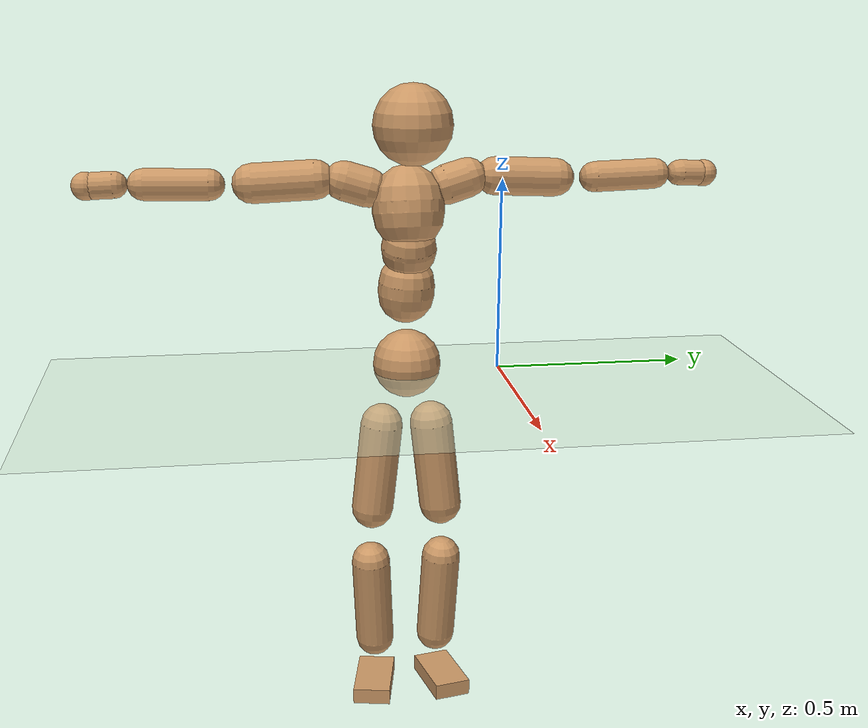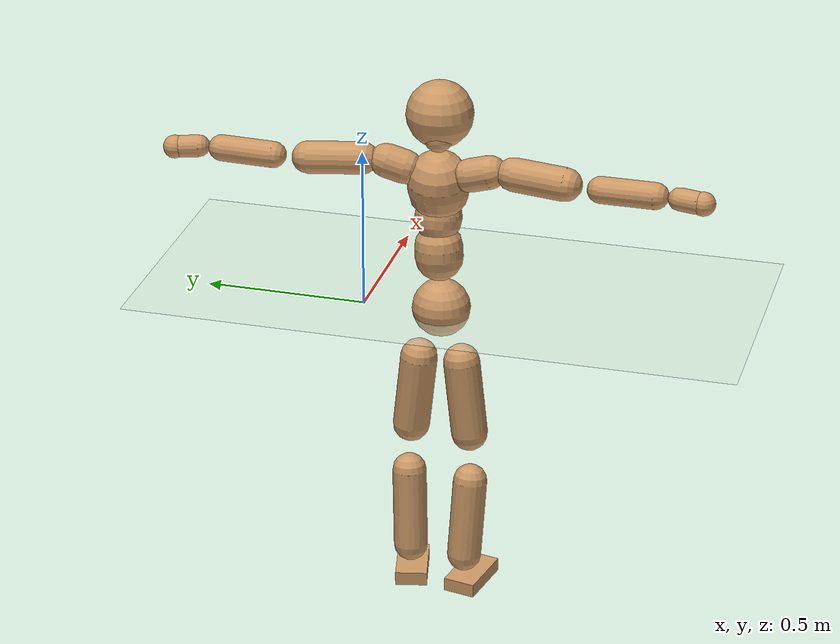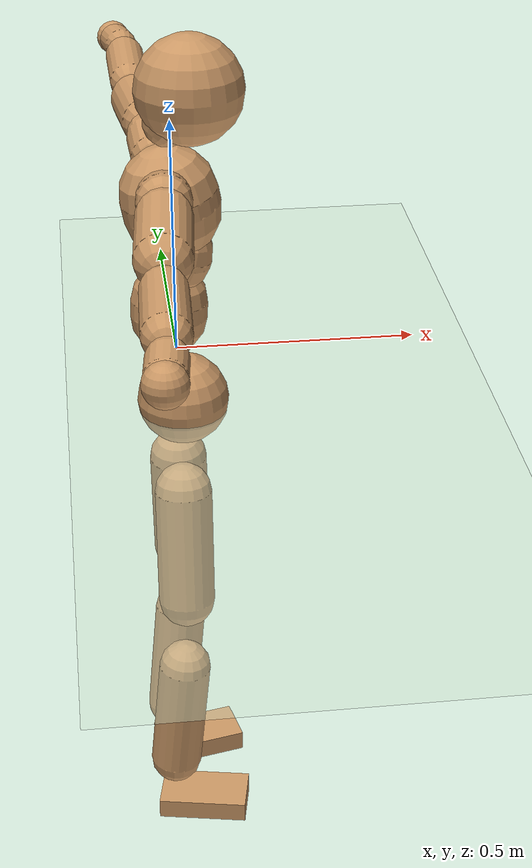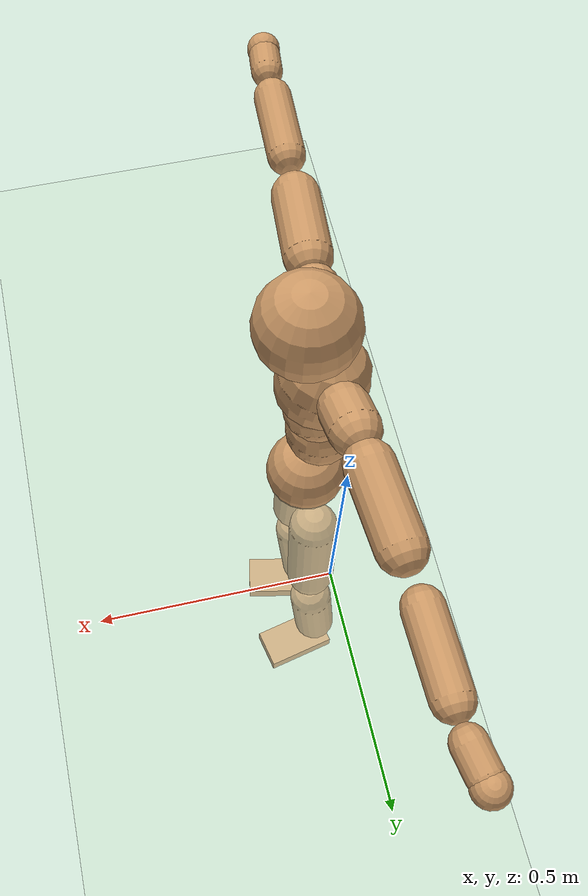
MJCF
<mujoco model="humanoid">
  <compiler coordinate="local"/>
  <default>
    <joint damping="0.0" armature="0.01" stiffness="0.0" limited="true"/>
    <geom conaffinity="1" condim="3" contype="7" margin="0.001" rgba="0.8 0.6 .4 1"/>
  </default>
  <asset>
    <texture type="skybox" builtin="gradient" rgb1=".4 .5 .6" rgb2="0 0 0" width="100" height="100"/>
    <texture builtin="flat" height="1278" mark="cross" markrgb="1 1 1" name="texgeom" random="0.01" rgb1="0.8 0.6 0.4" rgb2="0.8 0.6 0.4" type="cube" width="127"/>
    <texture builtin="checker" height="100" name="texplane" rgb1="0 0 0" rgb2="0.8 0.8 0.8" type="2d" width="100"/>
    <material name="MatPlane" reflectance="0.5" shininess="1" specular="1" texrepeat="60 60" texture="texplane"/>
    <material name="geom" texture="texgeom" texuniform="true"/>
  </asset>
  <worldbody>
    <light cutoff="100" diffuse="1 1 1" dir="-0 0 -1.3" directional="true" exponent="1" pos="0 0 1.3" specular=".1 .1 .1"/>
    <geom conaffinity="1" condim="3" name="floor" pos="0 0 0" rgba="0.8 0.9 0.8 1" size="100 100 .2" type="plane" material="MatPlane"/>
    <body name="Pelvis" pos="-0.0041 -0.2458 0.019">
      <freejoint name="Pelvis"/>
      <geom type="sphere" contype="1" conaffinity="1" density="500" size="0.0899" pos="0.0000 0.0000 0.0000" name="Pelvis"/>
      <body name="L_Hip" pos="-0.0106 0.0594 -0.0939">
        <joint name="L_Hip_x" type="hinge" pos="0 0 0" axis="1 0 0" stiffness="800" damping="80" armature="0.02" range="-180.0000 180.0000"/>
        <joint name="L_Hip_y" type="hinge" pos="0 0 0" axis="0 1 0" stiffness="800" damping="80" armature="0.02" range="-180.0000 180.0000"/>
        <joint name="L_Hip_z" type="hinge" pos="0 0 0" axis="0 0 1" stiffness="800" damping="80" armature="0.02" range="-180.0000 180.0000"/>
        <geom type="capsule" contype="1" conaffinity="1" density="500" fromto="0.0012 0.0087 -0.0791 0.0049 0.0347 -0.3163" size="0.0576" name="L_Hip"/>
        <body name="L_Knee" pos="0.0061 0.0434 -0.3954">
          <joint name="L_Knee_x" type="hinge" pos="0 0 0" axis="1 0 0" stiffness="800" damping="80" armature="0.02" range="-180.0000 180.0000"/>
          <joint name="L_Knee_y" type="hinge" pos="0 0 0" axis="0 1 0" stiffness="800" damping="80" armature="0.02" range="-180.0000 180.0000"/>
          <joint name="L_Knee_z" type="hinge" pos="0 0 0" axis="0 0 1" stiffness="800" damping="80" armature="0.02" range="-180.0000 180.0000"/>
          <geom type="capsule" contype="1" conaffinity="1" density="500" fromto="-0.0082 -0.0035 -0.0843 -0.0327 -0.0141 -0.3372" size="0.0532" name="L_Knee"/>
          <body name="L_Ankle" pos="-0.0409 -0.0177 -0.4215">
            <joint name="L_Ankle_x" type="hinge" pos="0 0 0" axis="1 0 0" stiffness="800" damping="80" armature="0.02" range="-180.0000 180.0000"/>
            <joint name="L_Ankle_y" type="hinge" pos="0 0 0" axis="0 1 0" stiffness="800" damping="80" armature="0.02" range="-180.0000 180.0000"/>
            <joint name="L_Ankle_z" type="hinge" pos="0 0 0" axis="0 0 1" stiffness="800" damping="80" armature="0.02" range="-180.0000 180.0000"/>
            <geom type="box" contype="1" conaffinity="1" density="500" pos="0.0638 0.0139 -0.0285" size="0.0896 0.0497 0.0218" quat="0.9943 0.0000 0.0000 0.1067" name="L_Ankle"/>
            <body name="L_Toe" pos="0.1276 0.0277 -0.0569">
              <joint name="L_Toe_x" type="hinge" pos="0 0 0" axis="1 0 0" stiffness="500" damping="50" armature="0.02" range="-180.0000 180.0000"/>
              <joint name="L_Toe_y" type="hinge" pos="0 0 0" axis="0 1 0" stiffness="500" damping="50" armature="0.02" range="-180.0000 180.0000"/>
              <joint name="L_Toe_z" type="hinge" pos="0 0 0" axis="0 0 1" stiffness="500" damping="50" armature="0.02" range="-180.0000 180.0000"/>
              <geom type="box" contype="1" conaffinity="1" density="500" pos="0.0000 0.0000 0.0279" size="0.001 0.0024 0.0011" quat="0.9937 0.0000 0.0000 0.1124" name="L_Toe"/>
            </body>
          </body>
        </body>
      </body>
      <body name="R_Hip" pos="-0.009 -0.0582 -0.092">
        <joint name="R_Hip_x" type="hinge" pos="0 0 0" axis="1 0 0" stiffness="800" damping="80" armature="0.02" range="-180.0000 180.0000"/>
        <joint name="R_Hip_y" type="hinge" pos="0 0 0" axis="0 1 0" stiffness="800" damping="80" armature="0.02" range="-180.0000 180.0000"/>
        <joint name="R_Hip_z" type="hinge" pos="0 0 0" axis="0 0 1" stiffness="800" damping="80" armature="0.02" range="-180.0000 180.0000"/>
        <geom type="capsule" contype="1" conaffinity="1" density="500" fromto="-0.0004 -0.0088 -0.0811 -0.0015 -0.0353 -0.3244" size="0.0565" name="R_Hip"/>
        <body name="R_Knee" pos="-0.0019 -0.0441 -0.4055">
          <joint name="R_Knee_x" type="hinge" pos="0 0 0" axis="1 0 0" stiffness="800" damping="80" armature="0.02" range="-180.0000 180.0000"/>
          <joint name="R_Knee_y" type="hinge" pos="0 0 0" axis="0 1 0" stiffness="800" damping="80" armature="0.02" range="-180.0000 180.0000"/>
          <joint name="R_Knee_z" type="hinge" pos="0 0 0" axis="0 0 1" stiffness="800" damping="80" armature="0.02" range="-180.0000 180.0000"/>
          <geom type="capsule" contype="1" conaffinity="1" density="500" fromto="-0.0079 0.0039 -0.0842 -0.0316 0.0158 -0.3368" size="0.0532" name="R_Knee"/>
          <body name="R_Ankle" pos="-0.0396 0.0197 -0.421">
            <joint name="R_Ankle_x" type="hinge" pos="0 0 0" axis="1 0 0" stiffness="800" damping="80" armature="0.02" range="-180.0000 180.0000"/>
            <joint name="R_Ankle_y" type="hinge" pos="0 0 0" axis="0 1 0" stiffness="800" damping="80" armature="0.02" range="-180.0000 180.0000"/>
            <joint name="R_Ankle_z" type="hinge" pos="0 0 0" axis="0 0 1" stiffness="800" damping="80" armature="0.02" range="-180.0000 180.0000"/>
            <geom type="box" contype="1" conaffinity="1" density="500" pos="0.0661 -0.0130 -0.0248" size="0.0923 0.0506 0.0215" quat="0.9953 0.0000 0.0000 -0.0968" name="R_Ankle"/>
            <body name="R_Toe" pos="0.1322 -0.026 -0.0495">
              <joint name="R_Toe_x" type="hinge" pos="0 0 0" axis="1 0 0" stiffness="500" damping="50" armature="0.02" range="-180.0000 180.0000"/>
              <joint name="R_Toe_y" type="hinge" pos="0 0 0" axis="0 1 0" stiffness="500" damping="50" armature="0.02" range="-180.0000 180.0000"/>
              <joint name="R_Toe_z" type="hinge" pos="0 0 0" axis="0 0 1" stiffness="500" damping="50" armature="0.02" range="-180.0000 180.0000"/>
              <geom type="box" contype="1" conaffinity="1" density="500" pos="0.0000 0.0000 0.0251" size="0.001 0.0025 0.0011" quat="0.9961 0.0000 0.0000 -0.0882" name="R_Toe"/>
            </body>
          </body>
        </body>
      </body>
      <body name="Torso" pos="-0.0263 -0.003 0.1172">
        <joint name="Torso_x" type="hinge" pos="0 0 0" axis="1 0 0" stiffness="1000" damping="100" armature="0.02" range="-180.0000 180.0000"/>
        <joint name="Torso_y" type="hinge" pos="0 0 0" axis="0 1 0" stiffness="1000" damping="100" armature="0.02" range="-180.0000 180.0000"/>
        <joint name="Torso_z" type="hinge" pos="0 0 0" axis="0 0 1" stiffness="1000" damping="100" armature="0.02" range="-180.0000 180.0000"/>
        <geom type="capsule" contype="1" conaffinity="1" density="500" fromto="0.0052 0.0056 0.0955 0.0035 0.0037 0.0637" size="0.0739" name="Torso"/>
        <body name="Spine" pos="0.0087 0.0093 0.1591">
          <joint name="Spine_x" type="hinge" pos="0 0 0" axis="1 0 0" stiffness="1000" damping="100" armature="0.02" range="-180.0000 180.0000"/>
          <joint name="Spine_y" type="hinge" pos="0 0 0" axis="0 1 0" stiffness="1000" damping="100" armature="0.02" range="-180.0000 180.0000"/>
          <joint name="Spine_z" type="hinge" pos="0 0 0" axis="0 0 1" stiffness="1000" damping="100" armature="0.02" range="-180.0000 180.0000"/>
          <geom type="capsule" contype="1" conaffinity="1" density="500" fromto="0.0110 0.0005 0.0359 0.0074 0.0003 0.0240" size="0.0718" name="Spine"/>
          <body name="Chest" pos="0.0184 0.0008 0.0599">
            <joint name="Chest_x" type="hinge" pos="0 0 0" axis="1 0 0" stiffness="1000" damping="100" armature="0.02" range="-180.0000 180.0000"/>
            <joint name="Chest_y" type="hinge" pos="0 0 0" axis="0 1 0" stiffness="1000" damping="100" armature="0.02" range="-180.0000 180.0000"/>
            <joint name="Chest_z" type="hinge" pos="0 0 0" axis="0 0 1" stiffness="1000" damping="100" armature="0.02" range="-180.0000 180.0000"/>
            <geom type="capsule" contype="1" conaffinity="1" density="500" fromto="-0.0167 -0.0018 0.0915 -0.0111 -0.0012 0.0610" size="0.0932" name="Chest"/>
            <body name="Neck" pos="-0.0264 -0.0044 0.216">
              <joint name="Neck_x" type="hinge" pos="0 0 0" axis="1 0 0" stiffness="500" damping="50" armature="0.02" range="-180.0000 180.0000"/>
              <joint name="Neck_y" type="hinge" pos="0 0 0" axis="0 1 0" stiffness="500" damping="50" armature="0.02" range="-180.0000 180.0000"/>
              <joint name="Neck_z" type="hinge" pos="0 0 0" axis="0 0 1" stiffness="500" damping="50" armature="0.02" range="-180.0000 180.0000"/>
              <geom type="capsule" contype="1" conaffinity="1" density="500" fromto="0.0106 0.0019 0.0142 0.0422 0.0074 0.0570" size="0.0455" name="Neck"/>
              <body name="Head" pos="0.0528 0.0093 0.0712">
                <joint name="Head_x" type="hinge" pos="0 0 0" axis="1 0 0" stiffness="500" damping="50" armature="0.02" range="-180.0000 180.0000"/>
                <joint name="Head_y" type="hinge" pos="0 0 0" axis="0 1 0" stiffness="500" damping="50" armature="0.02" range="-180.0000 180.0000"/>
                <joint name="Head_z" type="hinge" pos="0 0 0" axis="0 0 1" stiffness="500" damping="50" armature="0.02" range="-180.0000 180.0000"/>
                <geom type="sphere" contype="1" conaffinity="1" density="500" size="0.1022" pos="0.0000 0.0000 0.0000" name="Head"/>
              </body>
            </body>
            <body name="L_Thorax" pos="-0.0268 0.078 0.123">
              <joint name="L_Thorax_x" type="hinge" pos="0 0 0" axis="1 0 0" stiffness="500" damping="50" armature="0.02" range="-180.0000 180.0000"/>
              <joint name="L_Thorax_y" type="hinge" pos="0 0 0" axis="0 1 0" stiffness="500" damping="50" armature="0.02" range="-180.0000 180.0000"/>
              <joint name="L_Thorax_z" type="hinge" pos="0 0 0" axis="0 0 1" stiffness="500" damping="50" armature="0.02" range="-180.0000 180.0000"/>
              <geom type="capsule" contype="1" conaffinity="1" density="500" fromto="-0.0015 0.0189 0.0055 -0.0061 0.0755 0.0220" size="0.0518" name="L_Thorax"/>
              <body name="L_Shoulder" pos="-0.0076 0.0943 0.0275">
                <joint name="L_Shoulder_x" type="hinge" pos="0 0 0" axis="1 0 0" stiffness="500" damping="50" armature="0.02" range="-720.0000 720.0000"/>
                <joint name="L_Shoulder_y" type="hinge" pos="0 0 0" axis="0 1 0" stiffness="500" damping="50" armature="0.02" range="-720.0000 720.0000"/>
                <joint name="L_Shoulder_z" type="hinge" pos="0 0 0" axis="0 0 1" stiffness="500" damping="50" armature="0.02" range="-720.0000 720.0000"/>
                <geom type="capsule" contype="1" conaffinity="1" density="500" fromto="-0.0051 0.0545 -0.0032 -0.0204 0.2179 -0.0126" size="0.0495" name="L_Shoulder"/>
                <body name="L_Elbow" pos="-0.0255 0.2724 -0.0158">
                  <joint name="L_Elbow_x" type="hinge" pos="0 0 0" axis="1 0 0" stiffness="500" damping="50" armature="0.02" range="-720.0000 720.0000"/>
                  <joint name="L_Elbow_y" type="hinge" pos="0 0 0" axis="0 1 0" stiffness="500" damping="50" armature="0.02" range="-720.0000 720.0000"/>
                  <joint name="L_Elbow_z" type="hinge" pos="0 0 0" axis="0 0 1" stiffness="500" damping="50" armature="0.02" range="-720.0000 720.0000"/>
                  <geom type="capsule" contype="1" conaffinity="1" density="500" fromto="-0.0009 0.0535 0.0016 -0.0036 0.2141 0.0066" size="0.0402" name="L_Elbow"/>
                  <body name="L_Wrist" pos="-0.0045 0.2677 0.0082">
                    <joint name="L_Wrist_x" type="hinge" pos="0 0 0" axis="1 0 0" stiffness="300" damping="30" armature="0.02" range="-180.0000 180.0000"/>
                    <joint name="L_Wrist_y" type="hinge" pos="0 0 0" axis="0 1 0" stiffness="300" damping="30" armature="0.02" range="-180.0000 180.0000"/>
                    <joint name="L_Wrist_z" type="hinge" pos="0 0 0" axis="0 0 1" stiffness="300" damping="30" armature="0.02" range="-180.0000 180.0000"/>
                    <geom type="capsule" contype="1" conaffinity="1" density="500" fromto="-0.0035 0.0179 -0.0012 -0.0141 0.0715 -0.0046" size="0.0336" name="L_Wrist"/>
                    <body name="L_Hand" pos="-0.0176 0.0894 -0.0058">
                      <joint name="L_Hand_x" type="hinge" pos="0 0 0" axis="1 0 0" stiffness="300" damping="30" armature="0.02" range="-180.0000 180.0000"/>
                      <joint name="L_Hand_y" type="hinge" pos="0 0 0" axis="0 1 0" stiffness="300" damping="30" armature="0.02" range="-180.0000 180.0000"/>
                      <joint name="L_Hand_z" type="hinge" pos="0 0 0" axis="0 0 1" stiffness="300" damping="30" armature="0.02" range="-180.0000 180.0000"/>
                      <geom type="sphere" contype="1" conaffinity="1" density="500" size="0.0354" pos="0.0000 0.0000 0.0000" name="L_Hand"/>
                    </body>
                  </body>
                </body>
              </body>
            </body>
            <body name="R_Thorax" pos="-0.0302 -0.0824 0.1185">
              <joint name="R_Thorax_x" type="hinge" pos="0 0 0" axis="1 0 0" stiffness="500" damping="50" armature="0.02" range="-180.0000 180.0000"/>
              <joint name="R_Thorax_y" type="hinge" pos="0 0 0" axis="0 1 0" stiffness="500" damping="50" armature="0.02" range="-180.0000 180.0000"/>
              <joint name="R_Thorax_z" type="hinge" pos="0 0 0" axis="0 0 1" stiffness="500" damping="50" armature="0.02" range="-180.0000 180.0000"/>
              <geom type="capsule" contype="1" conaffinity="1" density="500" fromto="-0.0011 -0.0204 0.0062 -0.0043 -0.0816 0.0246" size="0.0509" name="R_Thorax"/>
              <body name="R_Shoulder" pos="-0.0054 -0.102 0.0308">
                <joint name="R_Shoulder_x" type="hinge" pos="0 0 0" axis="1 0 0" stiffness="500" damping="50" armature="0.02" range="-720.0000 720.0000"/>
                <joint name="R_Shoulder_y" type="hinge" pos="0 0 0" axis="0 1 0" stiffness="500" damping="50" armature="0.02" range="-720.0000 720.0000"/>
                <joint name="R_Shoulder_z" type="hinge" pos="0 0 0" axis="0 0 1" stiffness="500" damping="50" armature="0.02" range="-720.0000 720.0000"/>
                <geom type="capsule" contype="1" conaffinity="1" density="500" fromto="-0.0040 -0.0530 -0.0028 -0.0162 -0.2118 -0.0112" size="0.051" name="R_Shoulder"/>
                <body name="R_Elbow" pos="-0.0202 -0.2648 -0.014">
                  <joint name="R_Elbow_x" type="hinge" pos="0 0 0" axis="1 0 0" stiffness="500" damping="50" armature="0.02" range="-720.0000 720.0000"/>
                  <joint name="R_Elbow_y" type="hinge" pos="0 0 0" axis="0 1 0" stiffness="500" damping="50" armature="0.02" range="-720.0000 720.0000"/>
                  <joint name="R_Elbow_z" type="hinge" pos="0 0 0" axis="0 0 1" stiffness="500" damping="50" armature="0.02" range="-720.0000 720.0000"/>
                  <geom type="capsule" contype="1" conaffinity="1" density="500" fromto="-0.0023 -0.0545 0.0009 -0.0091 -0.2180 0.0036" size="0.0407" name="R_Elbow"/>
                  <body name="R_Wrist" pos="-0.0113 -0.2725 0.0046">
                    <joint name="R_Wrist_x" type="hinge" pos="0 0 0" axis="1 0 0" stiffness="300" damping="30" armature="0.02" range="-180.0000 180.0000"/>
                    <joint name="R_Wrist_y" type="hinge" pos="0 0 0" axis="0 1 0" stiffness="300" damping="30" armature="0.02" range="-180.0000 180.0000"/>
                    <joint name="R_Wrist_z" type="hinge" pos="0 0 0" axis="0 0 1" stiffness="300" damping="30" armature="0.02" range="-180.0000 180.0000"/>
                    <geom type="capsule" contype="1" conaffinity="1" density="500" fromto="-0.0020 -0.0180 -0.0008 -0.0079 -0.0718 -0.0034" size="0.0343" name="R_Wrist"/>
                    <body name="R_Hand" pos="-0.0099 -0.0898 -0.0042">
                      <joint name="R_Hand_x" type="hinge" pos="0 0 0" axis="1 0 0" stiffness="300" damping="30" armature="0.02" range="-180.0000 180.0000"/>
                      <joint name="R_Hand_y" type="hinge" pos="0 0 0" axis="0 1 0" stiffness="300" damping="30" armature="0.02" range="-180.0000 180.0000"/>
                      <joint name="R_Hand_z" type="hinge" pos="0 0 0" axis="0 0 1" stiffness="300" damping="30" armature="0.02" range="-180.0000 180.0000"/>
                      <geom type="sphere" contype="1" conaffinity="1" density="500" size="0.0360" pos="0.0000 0.0000 0.0000" name="R_Hand"/>
                    </body>
                  </body>
                </body>
              </body>
            </body>
          </body>
        </body>
      </body>
    </body>
  </worldbody>
  <actuator>
    <motor name="L_Hip_x" joint="L_Hip_x" gear="500"/>
    <motor name="L_Hip_y" joint="L_Hip_y" gear="500"/>
    <motor name="L_Hip_z" joint="L_Hip_z" gear="500"/>
    <motor name="L_Knee_x" joint="L_Knee_x" gear="500"/>
    <motor name="L_Knee_y" joint="L_Knee_y" gear="500"/>
    <motor name="L_Knee_z" joint="L_Knee_z" gear="500"/>
    <motor name="L_Ankle_x" joint="L_Ankle_x" gear="500"/>
    <motor name="L_Ankle_y" joint="L_Ankle_y" gear="500"/>
    <motor name="L_Ankle_z" joint="L_Ankle_z" gear="500"/>
    <motor name="L_Toe_x" joint="L_Toe_x" gear="500"/>
    <motor name="L_Toe_y" joint="L_Toe_y" gear="500"/>
    <motor name="L_Toe_z" joint="L_Toe_z" gear="500"/>
    <motor name="R_Hip_x" joint="R_Hip_x" gear="500"/>
    <motor name="R_Hip_y" joint="R_Hip_y" gear="500"/>
    <motor name="R_Hip_z" joint="R_Hip_z" gear="500"/>
    <motor name="R_Knee_x" joint="R_Knee_x" gear="500"/>
    <motor name="R_Knee_y" joint="R_Knee_y" gear="500"/>
    <motor name="R_Knee_z" joint="R_Knee_z" gear="500"/>
    <motor name="R_Ankle_x" joint="R_Ankle_x" gear="500"/>
    <motor name="R_Ankle_y" joint="R_Ankle_y" gear="500"/>
    <motor name="R_Ankle_z" joint="R_Ankle_z" gear="500"/>
    <motor name="R_Toe_x" joint="R_Toe_x" gear="500"/>
    <motor name="R_Toe_y" joint="R_Toe_y" gear="500"/>
    <motor name="R_Toe_z" joint="R_Toe_z" gear="500"/>
    <motor name="Torso_x" joint="Torso_x" gear="500"/>
    <motor name="Torso_y" joint="Torso_y" gear="500"/>
    <motor name="Torso_z" joint="Torso_z" gear="500"/>
    <motor name="Spine_x" joint="Spine_x" gear="500"/>
    <motor name="Spine_y" joint="Spine_y" gear="500"/>
    <motor name="Spine_z" joint="Spine_z" gear="500"/>
    <motor name="Chest_x" joint="Chest_x" gear="500"/>
    <motor name="Chest_y" joint="Chest_y" gear="500"/>
    <motor name="Chest_z" joint="Chest_z" gear="500"/>
    <motor name="Neck_x" joint="Neck_x" gear="500"/>
    <motor name="Neck_y" joint="Neck_y" gear="500"/>
    <motor name="Neck_z" joint="Neck_z" gear="500"/>
    <motor name="Head_x" joint="Head_x" gear="500"/>
    <motor name="Head_y" joint="Head_y" gear="500"/>
    <motor name="Head_z" joint="Head_z" gear="500"/>
    <motor name="L_Thorax_x" joint="L_Thorax_x" gear="500"/>
    <motor name="L_Thorax_y" joint="L_Thorax_y" gear="500"/>
    <motor name="L_Thorax_z" joint="L_Thorax_z" gear="500"/>
    <motor name="L_Shoulder_x" joint="L_Shoulder_x" gear="500"/>
    <motor name="L_Shoulder_y" joint="L_Shoulder_y" gear="500"/>
    <motor name="L_Shoulder_z" joint="L_Shoulder_z" gear="500"/>
    <motor name="L_Elbow_x" joint="L_Elbow_x" gear="500"/>
    <motor name="L_Elbow_y" joint="L_Elbow_y" gear="500"/>
    <motor name="L_Elbow_z" joint="L_Elbow_z" gear="500"/>
    <motor name="L_Wrist_x" joint="L_Wrist_x" gear="500"/>
    <motor name="L_Wrist_y" joint="L_Wrist_y" gear="500"/>
    <motor name="L_Wrist_z" joint="L_Wrist_z" gear="500"/>
    <motor name="L_Hand_x" joint="L_Hand_x" gear="500"/>
    <motor name="L_Hand_y" joint="L_Hand_y" gear="500"/>
    <motor name="L_Hand_z" joint="L_Hand_z" gear="500"/>
    <motor name="R_Thorax_x" joint="R_Thorax_x" gear="500"/>
    <motor name="R_Thorax_y" joint="R_Thorax_y" gear="500"/>
    <motor name="R_Thorax_z" joint="R_Thorax_z" gear="500"/>
    <motor name="R_Shoulder_x" joint="R_Shoulder_x" gear="500"/>
    <motor name="R_Shoulder_y" joint="R_Shoulder_y" gear="500"/>
    <motor name="R_Shoulder_z" joint="R_Shoulder_z" gear="500"/>
    <motor name="R_Elbow_x" joint="R_Elbow_x" gear="500"/>
    <motor name="R_Elbow_y" joint="R_Elbow_y" gear="500"/>
    <motor name="R_Elbow_z" joint="R_Elbow_z" gear="500"/>
    <motor name="R_Wrist_x" joint="R_Wrist_x" gear="500"/>
    <motor name="R_Wrist_y" joint="R_Wrist_y" gear="500"/>
    <motor name="R_Wrist_z" joint="R_Wrist_z" gear="500"/>
    <motor name="R_Hand_x" joint="R_Hand_x" gear="500"/>
    <motor name="R_Hand_y" joint="R_Hand_y" gear="500"/>
    <motor name="R_Hand_z" joint="R_Hand_z" gear="500"/>
  </actuator>
  <contact>
    <exclude body1="Torso" body2="Chest"/>
    <exclude body1="Head" body2="Chest"/>
    <exclude body1="R_Knee" body2="R_Toe"/>
    <exclude body1="R_Knee" body2="L_Ankle"/>
    <exclude body1="R_Knee" body2="L_Toe"/>
    <exclude body1="L_Knee" body2="L_Toe"/>
    <exclude body1="L_Knee" body2="R_Ankle"/>
    <exclude body1="L_Knee" body2="R_Toe"/>
    <exclude body1="L_Shoulder" body2="Chest"/>
    <exclude body1="R_Shoulder" body2="Chest"/>
  </contact>
  <sensor/>
  <size njmax="700" nconmax="700"/>
</mujoco>
